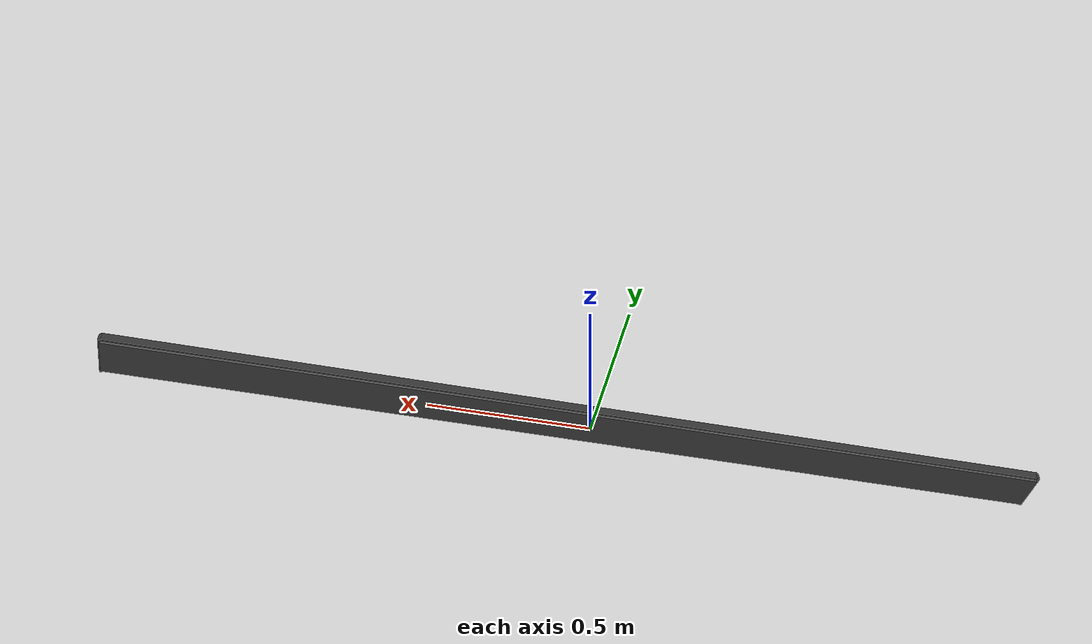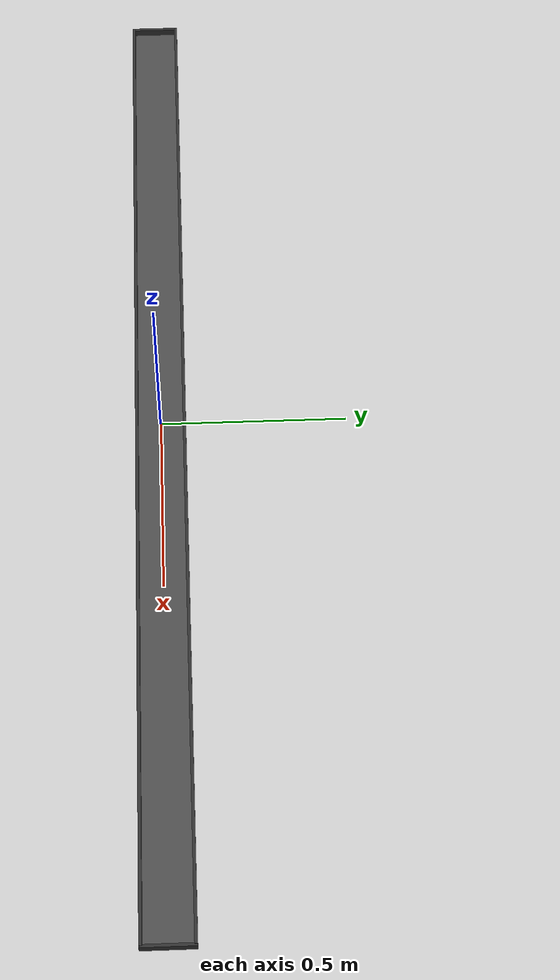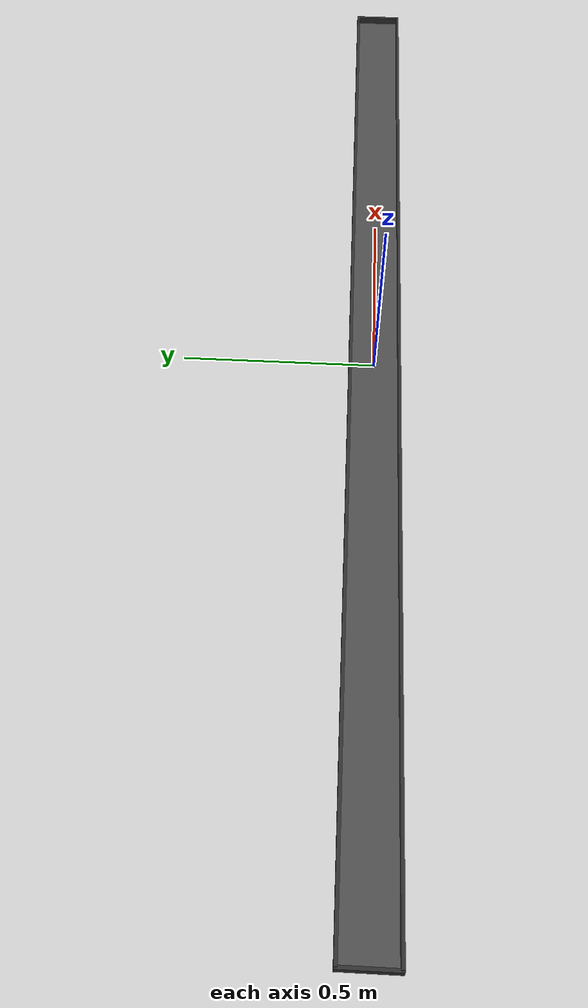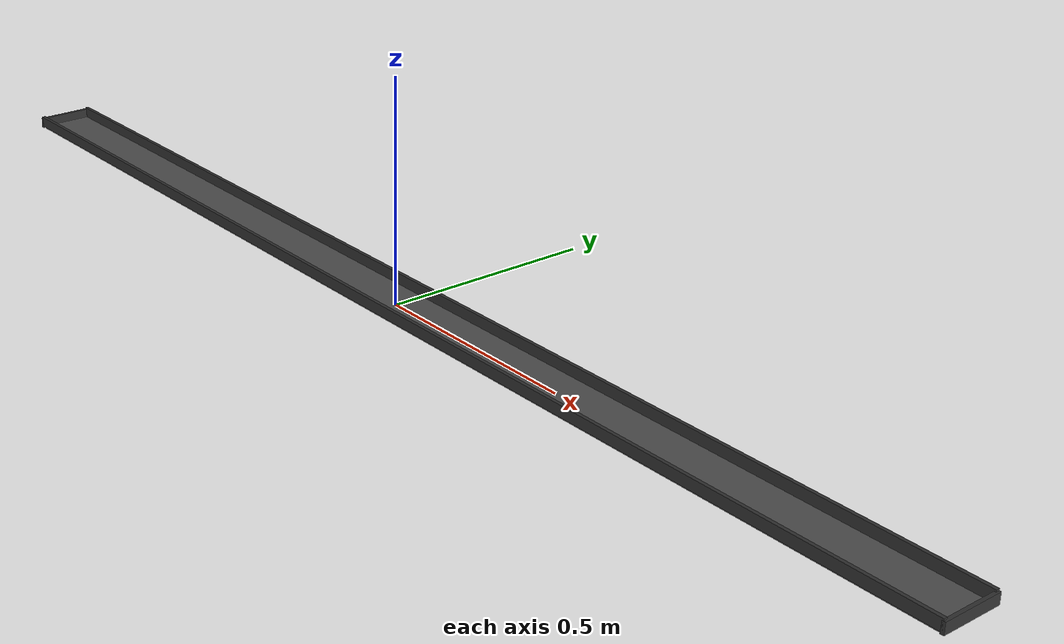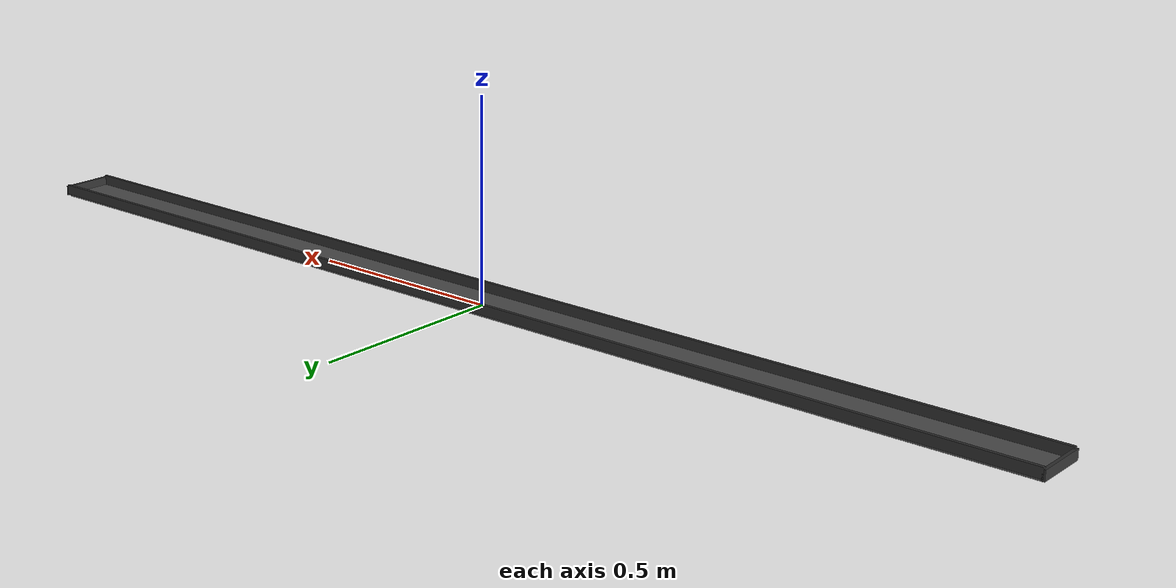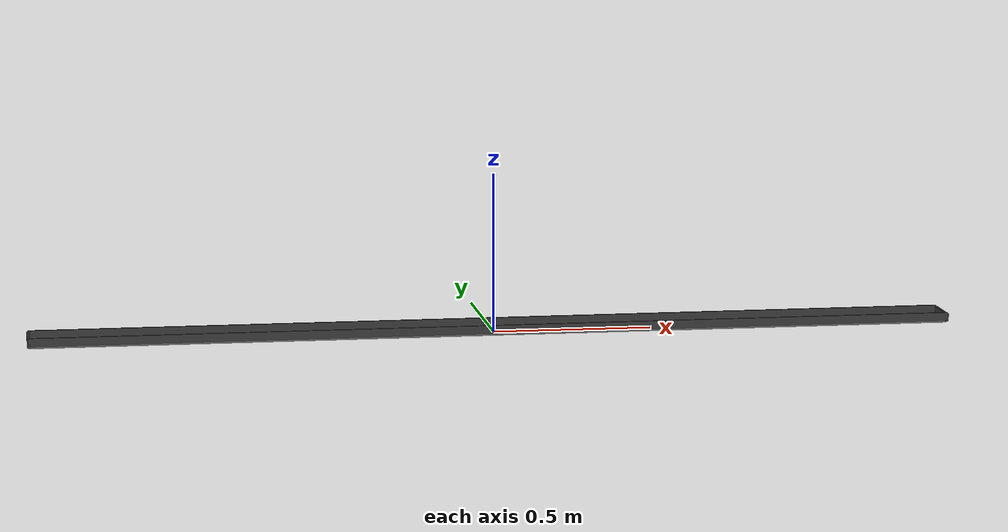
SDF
<?xml version="1.0" ?>
<sdf version="1.10">
  <model name="conveyor_return">
    <static>true</static>

    <link name="belt">
      <pose>0 0 0.004 0 0 0</pose>
      <collision name="col">
        <geometry><box><size>2.9 0.12 0.008</size></box></geometry>
      </collision>
      <visual name="vis">
        <geometry><box><size>2.9 0.12 0.008</size></box></geometry>
        <material>
          <ambient>0.22 0.22 0.22 1</ambient>
          <diffuse>0.32 0.32 0.32 1</diffuse>
          <specular>0.05 0.05 0.05 1</specular>
        </material>
      </visual>
    </link>

    <link name="rail_front">
      <pose>0 -0.064 0.0205 0 0 0</pose>
      <collision name="col">
        <geometry><box><size>2.9 0.008 0.025</size></box></geometry>
      </collision>
      <visual name="vis">
        <geometry><box><size>2.9 0.008 0.025</size></box></geometry>
        <material>
          <ambient>0.12 0.12 0.12 1</ambient>
          <diffuse>0.20 0.20 0.20 1</diffuse>
        </material>
      </visual>
    </link>

    <link name="rail_back">
      <pose>0 0.064 0.0205 0 0 0</pose>
      <collision name="col">
        <geometry><box><size>2.9 0.008 0.025</size></box></geometry>
      </collision>
      <visual name="vis">
        <geometry><box><size>2.9 0.008 0.025</size></box></geometry>
        <material>
          <ambient>0.12 0.12 0.12 1</ambient>
          <diffuse>0.20 0.20 0.20 1</diffuse>
        </material>
      </visual>
    </link>

    <link name="cap_left">
      <pose>-1.45 0 0.0165 0 0 0</pose>
      <collision name="col">
        <geometry><box><size>0.008 0.136 0.025</size></box></geometry>
      </collision>
      <visual name="vis">
        <geometry><box><size>0.008 0.136 0.025</size></box></geometry>
        <material>
          <ambient>0.12 0.12 0.12 1</ambient>
          <diffuse>0.20 0.20 0.20 1</diffuse>
        </material>
      </visual>
    </link>

    <link name="cap_right">
      <pose>1.45 0 0.0165 0 0 0</pose>
      <collision name="col">
        <geometry><box><size>0.008 0.136 0.025</size></box></geometry>
      </collision>
      <visual name="vis">
        <geometry><box><size>0.008 0.136 0.025</size></box></geometry>
        <material>
          <ambient>0.12 0.12 0.12 1</ambient>
          <diffuse>0.20 0.20 0.20 1</diffuse>
        </material>
      </visual>
    </link>

  </model>
</sdf>
